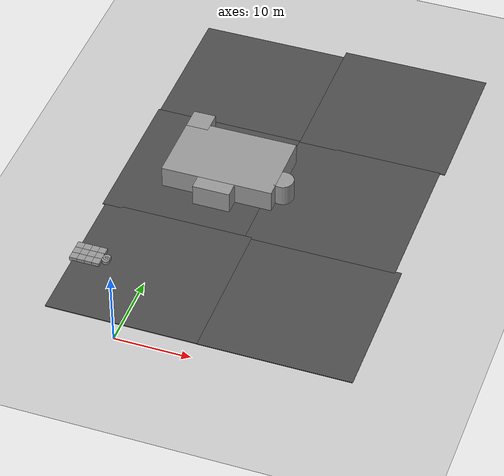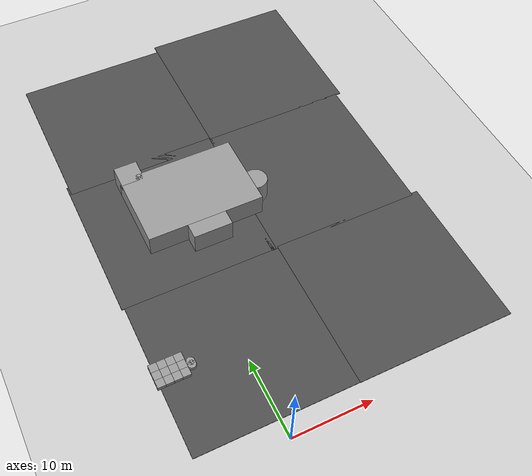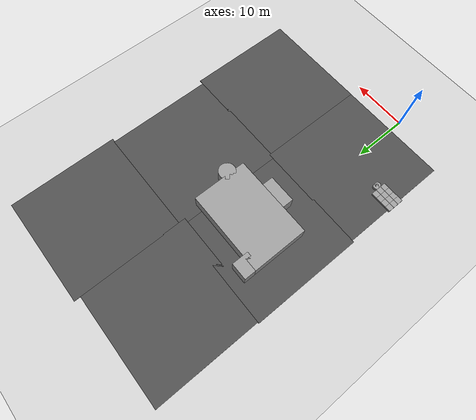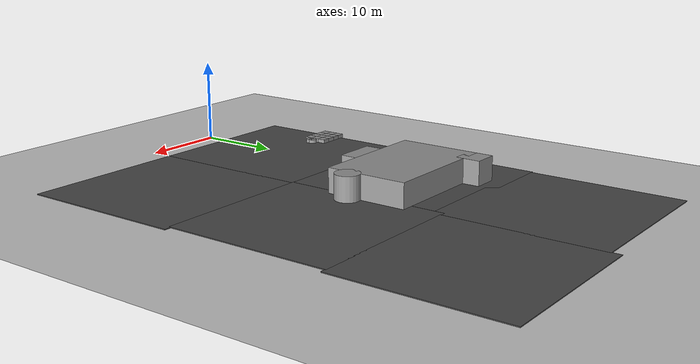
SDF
<sdf version="1.6">
 <world name="default">
  <model name="ground_plane">
   <static>1</static>
   <link name="link">
    <collision name="collision">
     <geometry><plane><normal>0 0 1</normal><size>100 100</size></plane></geometry>
     <surface><friction><ode><mu>100</mu><mu2>50</mu2></ode></friction></surface>
    </collision>
    <visual name="visual">
     <cast_shadows>0</cast_shadows>
     <geometry><plane><normal>0 0 1</normal><size>100 100</size></plane></geometry>
     <material>
      <script><uri>file://media/materials/scripts/gazebo.material</uri><name>Gazebo/Grey</name></script>
     </material>
    </visual>
   </link>
  </model>
  <model name="asphalt_plane">
   <static>1</static>
   <link name="link">
    <collision name="collision"><geometry><box><size>20 20 0.1</size></box></geometry></collision>
    <visual name="visual">
     <cast_shadows>0</cast_shadows>
     <geometry><box><size>20 20 0.1</size></box></geometry>
     <material>
      <script>
       <uri>model://asphalt_plane/materials/scripts</uri>
       <uri>model://asphalt_plane/materials/textures</uri>
       <name>vrc/asphalt</name>
      </script>
     </material>
    </visual>
   </link>
   <pose>-0.132526 12.4193 0 0 -0 0</pose>
  </model>
  <model name="asphalt_plane_1">
   <static>1</static>
   <link name="link">
    <collision name="collision"><geometry><box><size>20 20 0.1</size></box></geometry></collision>
    <visual name="visual">
     <cast_shadows>0</cast_shadows>
     <geometry><box><size>20 20 0.1</size></box></geometry>
     <material>
      <script>
       <uri>model://asphalt_plane/materials/scripts</uri>
       <uri>model://asphalt_plane/materials/textures</uri>
       <name>vrc/asphalt</name>
      </script>
     </material>
    </visual>
   </link>
   <pose>19.7678 12.3935 0 0 -0 0</pose>
  </model>
  <model name="asphalt_plane_3">
   <static>1</static>
   <link name="link">
    <collision name="collision"><geometry><box><size>20 20 0.1</size></box></geometry></collision>
    <visual name="visual">
     <cast_shadows>0</cast_shadows>
     <geometry><box><size>20 20 0.1</size></box></geometry>
     <material>
      <script>
       <uri>model://asphalt_plane/materials/scripts</uri>
       <uri>model://asphalt_plane/materials/textures</uri>
       <name>vrc/asphalt</name>
      </script>
     </material>
    </visual>
   </link>
   <pose>-0.46371 32.1726 0 0 -0 0</pose>
  </model>
  <model name="asphalt_plane_4">
   <static>1</static>
   <link name="link">
    <collision name="collision"><geometry><box><size>20 20 0.1</size></box></geometry></collision>
    <visual name="visual">
     <cast_shadows>0</cast_shadows>
     <geometry><box><size>20 20 0.1</size></box></geometry>
     <material>
      <script>
       <uri>model://asphalt_plane/materials/scripts</uri>
       <uri>model://asphalt_plane/materials/textures</uri>
       <name>vrc/asphalt</name>
      </script>
     </material>
    </visual>
   </link>
   <pose>18.9559 32.1129 0 0 -0 0</pose>
  </model>
  <model name="asphalt_plane_6">
   <static>1</static>
   <link name="link">
    <collision name="collision"><geometry><box><size>20 20 0.1</size></box></geometry></collision>
    <visual name="visual">
     <cast_shadows>0</cast_shadows>
     <geometry><box><size>20 20 0.1</size></box></geometry>
     <material>
      <script>
       <uri>model://asphalt_plane/materials/scripts</uri>
       <uri>model://asphalt_plane/materials/textures</uri>
       <name>vrc/asphalt</name>
      </script>
     </material>
    </visual>
   </link>
   <pose>-0.241035 50.8968 0 0 -0 0</pose>
  </model>
  <model name="asphalt_plane_7">
   <static>1</static>
   <link name="link">
    <collision name="collision"><geometry><box><size>20 20 0.1</size></box></geometry></collision>
    <visual name="visual">
     <cast_shadows>0</cast_shadows>
     <geometry><box><size>20 20 0.1</size></box></geometry>
     <material>
      <script>
       <uri>model://asphalt_plane/materials/scripts</uri>
       <uri>model://asphalt_plane/materials/textures</uri>
       <name>vrc/asphalt</name>
      </script>
     </material>
    </visual>
   </link>
   <pose>19.6222 51.9888 0 0 -0 0</pose>
  </model>
  <model name="car_1">
   <link name="link_0">
    <pose>-0.5 -0.883748 0 0 -0 0</pose>
    <inertial>
     <mass>1</mass>
     <inertia>
      <ixx>0.166667</ixx>
      <ixy>0</ixy>
      <ixz>0</ixz>
      <iyy>0.166667</iyy>
      <iyz>0</iyz>
      <izz>0.166667</izz>
     </inertia>
    </inertial>
    <visual name="visual">
     <geometry><box><size>1 1 1</size></box></geometry>
     <material>
      <lighting>1</lighting>
      <script><uri>file://media/materials/scripts/gazebo.material</uri><name>Gazebo/Grey</name></script>
      <ambient>0.3 0.3 0.3 1</ambient>
      <diffuse>0.7 0.7 0.7 1</diffuse>
      <specular>0.01 0.01 0.01 1</specular>
      <emissive>0 0 0 1</emissive>
     </material>
    </visual>
    <collision name="collision">
     <geometry><box><size>1 1 1</size></box></geometry>
     <surface>
      <friction>
       <ode><mu>1</mu><mu2>1</mu2><fdir1>0 0 0</fdir1><slip1>0</slip1><slip2>0</slip2></ode>
       <torsional>
        <coefficient>1</coefficient>
        <patch_radius>0</patch_radius>
        <surface_radius>0</surface_radius>
        <use_patch_radius>1</use_patch_radius>
        <ode><slip>0</slip></ode>
       </torsional>
      </friction>
      <bounce><restitution_coefficient>0</restitution_coefficient><threshold>1e+06</threshold></bounce>
      <contact>
       <collide_without_contact>0</collide_without_contact>
       <collide_without_contact_bitmask>1</collide_without_contact_bitmask>
       <collide_bitmask>1</collide_bitmask>
       <ode>
        <soft_cfm>0</soft_cfm>
        <soft_erp>0.2</soft_erp>
        <kp>1e+13</kp>
        <kd>1</kd>
        <max_vel>0.01</max_vel>
        <min_depth>0</min_depth>
       </ode>
       <bullet>
        <split_impulse>1</split_impulse>
        <split_impulse_penetration_threshold>-0.01</split_impulse_penetration_threshold>
        <soft_cfm>0</soft_cfm>
        <soft_erp>0.2</soft_erp>
        <kp>1e+13</kp>
        <kd>1</kd>
       </bullet>
      </contact>
     </surface>
    </collision>
   </link>
   <link name="link_1">
    <pose>0.5 -0.883748 0 0 -0 0</pose>
    <inertial>
     <mass>1</mass>
     <inertia>
      <ixx>0.166667</ixx>
      <ixy>0</ixy>
      <ixz>0</ixz>
      <iyy>0.166667</iyy>
      <iyz>0</iyz>
      <izz>0.166667</izz>
     </inertia>
    </inertial>
    <visual name="visual">
     <geometry><box><size>1 1 1</size></box></geometry>
     <material>
      <lighting>1</lighting>
      <script><uri>file://media/materials/scripts/gazebo.material</uri><name>Gazebo/Grey</name></script>
      <ambient>0.3 0.3 0.3 1</ambient>
      <diffuse>0.7 0.7 0.7 1</diffuse>
      <specular>0.01 0.01 0.01 1</specular>
      <emissive>0 0 0 1</emissive>
     </material>
    </visual>
    <collision name="collision">
     <geometry><box><size>1 1 1</size></box></geometry>
     <surface>
      <friction>
       <ode><mu>1</mu><mu2>1</mu2><fdir1>0 0 0</fdir1><slip1>0</slip1><slip2>0</slip2></ode>
       <torsional>
        <coefficient>1</coefficient>
        <patch_radius>0</patch_radius>
        <surface_radius>0</surface_radius>
        <use_patch_radius>1</use_patch_radius>
        <ode><slip>0</slip></ode>
       </torsional>
      </friction>
      <bounce><restitution_coefficient>0</restitution_coefficient><threshold>1e+06</threshold></bounce>
      <contact>
       <collide_without_contact>0</collide_without_contact>
       <collide_without_contact_bitmask>1</collide_without_contact_bitmask>
       <collide_bitmask>1</collide_bitmask>
       <ode>
        <soft_cfm>0</soft_cfm>
        <soft_erp>0.2</soft_erp>
        <kp>1e+13</kp>
        <kd>1</kd>
        <max_vel>0.01</max_vel>
        <min_depth>0</min_depth>
       </ode>
       <bullet>
        <split_impulse>1</split_impulse>
        <split_impulse_penetration_threshold>-0.01</split_impulse_penetration_threshold>
        <soft_cfm>0</soft_cfm>
        <soft_erp>0.2</soft_erp>
        <kp>1e+13</kp>
        <kd>1</kd>
       </bullet>
      </contact>
     </surface>
    </collision>
   </link>
   <link name="link_12">
    <pose>-1.5 0.11625 0 0 -0 0</pose>
    <inertial>
     <mass>1</mass>
     <inertia>
      <ixx>0.166667</ixx>
      <ixy>0</ixy>
      <ixz>0</ixz>
      <iyy>0.166667</iyy>
      <iyz>0</iyz>
      <izz>0.166667</izz>
     </inertia>
    </inertial>
    <visual name="visual">
     <geometry><box><size>1 1 1</size></box></geometry>
     <material>
      <lighting>1</lighting>
      <script><uri>file://media/materials/scripts/gazebo.material</uri><name>Gazebo/Grey</name></script>
      <ambient>0.3 0.3 0.3 1</ambient>
      <diffuse>0.7 0.7 0.7 1</diffuse>
      <specular>0.01 0.01 0.01 1</specular>
      <emissive>0 0 0 1</emissive>
     </material>
    </visual>
    <collision name="collision">
     <geometry><box><size>1 1 1</size></box></geometry>
     <surface>
      <friction>
       <ode><mu>1</mu><mu2>1</mu2><fdir1>0 0 0</fdir1><slip1>0</slip1><slip2>0</slip2></ode>
       <torsional>
        <coefficient>1</coefficient>
        <patch_radius>0</patch_radius>
        <surface_radius>0</surface_radius>
        <use_patch_radius>1</use_patch_radius>
        <ode><slip>0</slip></ode>
       </torsional>
      </friction>
      <bounce><restitution_coefficient>0</restitution_coefficient><threshold>1e+06</threshold></bounce>
      <contact>
       <collide_without_contact>0</collide_without_contact>
       <collide_without_contact_bitmask>1</collide_without_contact_bitmask>
       <collide_bitmask>1</collide_bitmask>
       <ode>
        <soft_cfm>0</soft_cfm>
        <soft_erp>0.2</soft_erp>
        <kp>1e+13</kp>
        <kd>1</kd>
        <max_vel>0.01</max_vel>
        <min_depth>0</min_depth>
       </ode>
       <bullet>
        <split_impulse>1</split_impulse>
        <split_impulse_penetration_threshold>-0.01</split_impulse_penetration_threshold>
        <soft_cfm>0</soft_cfm>
        <soft_erp>0.2</soft_erp>
        <kp>1e+13</kp>
        <kd>1</kd>
       </bullet>
      </contact>
     </surface>
    </collision>
   </link>
   <link name="link_13">
    <pose>1.5 1.11625 0 0 -0 0</pose>
    <inertial>
     <mass>1</mass>
     <inertia>
      <ixx>0.166667</ixx>
      <ixy>0</ixy>
      <ixz>0</ixz>
      <iyy>0.166667</iyy>
      <iyz>0</iyz>
      <izz>0.166667</izz>
     </inertia>
    </inertial>
    <visual name="visual">
     <geometry><box><size>1 1 1</size></box></geometry>
     <material>
      <lighting>1</lighting>
      <script><uri>file://media/materials/scripts/gazebo.material</uri><name>Gazebo/Grey</name></script>
      <ambient>0.3 0.3 0.3 1</ambient>
      <diffuse>0.7 0.7 0.7 1</diffuse>
      <specular>0.01 0.01 0.01 1</specular>
      <emissive>0 0 0 1</emissive>
     </material>
    </visual>
    <collision name="collision">
     <geometry><box><size>1 1 1</size></box></geometry>
     <surface>
      <friction>
       <ode><mu>1</mu><mu2>1</mu2><fdir1>0 0 0</fdir1><slip1>0</slip1><slip2>0</slip2></ode>
       <torsional>
        <coefficient>1</coefficient>
        <patch_radius>0</patch_radius>
        <surface_radius>0</surface_radius>
        <use_patch_radius>1</use_patch_radius>
        <ode><slip>0</slip></ode>
       </torsional>
      </friction>
      <bounce><restitution_coefficient>0</restitution_coefficient><threshold>1e+06</threshold></bounce>
      <contact>
       <collide_without_contact>0</collide_without_contact>
       <collide_without_contact_bitmask>1</collide_without_contact_bitmask>
       <collide_bitmask>1</collide_bitmask>
       <ode>
        <soft_cfm>0</soft_cfm>
        <soft_erp>0.2</soft_erp>
        <kp>1e+13</kp>
        <kd>1</kd>
        <max_vel>0.01</max_vel>
        <min_depth>0</min_depth>
       </ode>
       <bullet>
        <split_impulse>1</split_impulse>
        <split_impulse_penetration_threshold>-0.01</split_impulse_penetration_threshold>
        <soft_cfm>0</soft_cfm>
        <soft_erp>0.2</soft_erp>
        <kp>1e+13</kp>
        <kd>1</kd>
       </bullet>
      </contact>
     </surface>
    </collision>
   </link>
   <link name="link_14">
    <pose>0.5 1.11625 0 0 -0 0</pose>
    <inertial>
     <mass>1</mass>
     <inertia>
      <ixx>0.166667</ixx>
      <ixy>0</ixy>
      <ixz>0</ixz>
      <iyy>0.166667</iyy>
      <iyz>0</iyz>
      <izz>0.166667</izz>
     </inertia>
    </inertial>
    <visual name="visual">
     <geometry><box><size>1 1 1</size></box></geometry>
     <material>
      <lighting>1</lighting>
      <script><uri>file://media/materials/scripts/gazebo.material</uri><name>Gazebo/Grey</name></script>
      <ambient>0.3 0.3 0.3 1</ambient>
      <diffuse>0.7 0.7 0.7 1</diffuse>
      <specular>0.01 0.01 0.01 1</specular>
      <emissive>0 0 0 1</emissive>
     </material>
    </visual>
    <collision name="collision">
     <geometry><box><size>1 1 1</size></box></geometry>
     <surface>
      <friction>
       <ode><mu>1</mu><mu2>1</mu2><fdir1>0 0 0</fdir1><slip1>0</slip1><slip2>0</slip2></ode>
       <torsional>
        <coefficient>1</coefficient>
        <patch_radius>0</patch_radius>
        <surface_radius>0</surface_radius>
        <use_patch_radius>1</use_patch_radius>
        <ode><slip>0</slip></ode>
       </torsional>
      </friction>
      <bounce><restitution_coefficient>0</restitution_coefficient><threshold>1e+06</threshold></bounce>
      <contact>
       <collide_without_contact>0</collide_without_contact>
       <collide_without_contact_bitmask>1</collide_without_contact_bitmask>
       <collide_bitmask>1</collide_bitmask>
       <ode>
        <soft_cfm>0</soft_cfm>
        <soft_erp>0.2</soft_erp>
        <kp>1e+13</kp>
        <kd>1</kd>
        <max_vel>0.01</max_vel>
        <min_depth>0</min_depth>
       </ode>
       <bullet>
        <split_impulse>1</split_impulse>
        <split_impulse_penetration_threshold>-0.01</split_impulse_penetration_threshold>
        <soft_cfm>0</soft_cfm>
        <soft_erp>0.2</soft_erp>
        <kp>1e+13</kp>
        <kd>1</kd>
       </bullet>
      </contact>
     </surface>
    </collision>
   </link>
   <link name="link_15">
    <pose>-0.5 1.11625 0 0 -0 0</pose>
    <inertial>
     <mass>1</mass>
     <inertia>
      <ixx>0.166667</ixx>
      <ixy>0</ixy>
      <ixz>0</ixz>
      <iyy>0.166667</iyy>
      <iyz>0</iyz>
      <izz>0.166667</izz>
     </inertia>
    </inertial>
    <visual name="visual">
     <geometry><box><size>1 1 1</size></box></geometry>
     <material>
      <lighting>1</lighting>
      <script><uri>file://media/materials/scripts/gazebo.material</uri><name>Gazebo/Grey</name></script>
      <ambient>0.3 0.3 0.3 1</ambient>
      <diffuse>0.7 0.7 0.7 1</diffuse>
      <specular>0.01 0.01 0.01 1</specular>
      <emissive>0 0 0 1</emissive>
     </material>
    </visual>
    <collision name="collision">
     <geometry><box><size>1 1 1</size></box></geometry>
     <surface>
      <friction>
       <ode><mu>1</mu><mu2>1</mu2><fdir1>0 0 0</fdir1><slip1>0</slip1><slip2>0</slip2></ode>
       <torsional>
        <coefficient>1</coefficient>
        <patch_radius>0</patch_radius>
        <surface_radius>0</surface_radius>
        <use_patch_radius>1</use_patch_radius>
        <ode><slip>0</slip></ode>
       </torsional>
      </friction>
      <bounce><restitution_coefficient>0</restitution_coefficient><threshold>1e+06</threshold></bounce>
      <contact>
       <collide_without_contact>0</collide_without_contact>
       <collide_without_contact_bitmask>1</collide_without_contact_bitmask>
       <collide_bitmask>1</collide_bitmask>
       <ode>
        <soft_cfm>0</soft_cfm>
        <soft_erp>0.2</soft_erp>
        <kp>1e+13</kp>
        <kd>1</kd>
        <max_vel>0.01</max_vel>
        <min_depth>0</min_depth>
       </ode>
       <bullet>
        <split_impulse>1</split_impulse>
        <split_impulse_penetration_threshold>-0.01</split_impulse_penetration_threshold>
        <soft_cfm>0</soft_cfm>
        <soft_erp>0.2</soft_erp>
        <kp>1e+13</kp>
        <kd>1</kd>
       </bullet>
      </contact>
     </surface>
    </collision>
   </link>
   <link name="link_16">
    <pose>-1.5 1.11625 0 0 -0 0</pose>
    <inertial>
     <mass>1</mass>
     <inertia>
      <ixx>0.166667</ixx>
      <ixy>0</ixy>
      <ixz>0</ixz>
      <iyy>0.166667</iyy>
      <iyz>0</iyz>
      <izz>0.166667</izz>
     </inertia>
    </inertial>
    <visual name="visual">
     <geometry><box><size>1 1 1</size></box></geometry>
     <material>
      <lighting>1</lighting>
      <script><uri>file://media/materials/scripts/gazebo.material</uri><name>Gazebo/Grey</name></script>
      <ambient>0.3 0.3 0.3 1</ambient>
      <diffuse>0.7 0.7 0.7 1</diffuse>
      <specular>0.01 0.01 0.01 1</specular>
      <emissive>0 0 0 1</emissive>
     </material>
    </visual>
    <collision name="collision">
     <geometry><box><size>1 1 1</size></box></geometry>
     <surface>
      <friction>
       <ode><mu>1</mu><mu2>1</mu2><fdir1>0 0 0</fdir1><slip1>0</slip1><slip2>0</slip2></ode>
       <torsional>
        <coefficient>1</coefficient>
        <patch_radius>0</patch_radius>
        <surface_radius>0</surface_radius>
        <use_patch_radius>1</use_patch_radius>
        <ode><slip>0</slip></ode>
       </torsional>
      </friction>
      <bounce><restitution_coefficient>0</restitution_coefficient><threshold>1e+06</threshold></bounce>
      <contact>
       <collide_without_contact>0</collide_without_contact>
       <collide_without_contact_bitmask>1</collide_without_contact_bitmask>
       <collide_bitmask>1</collide_bitmask>
       <ode>
        <soft_cfm>0</soft_cfm>
        <soft_erp>0.2</soft_erp>
        <kp>1e+13</kp>
        <kd>1</kd>
        <max_vel>0.01</max_vel>
        <min_depth>0</min_depth>
       </ode>
       <bullet>
        <split_impulse>1</split_impulse>
        <split_impulse_penetration_threshold>-0.01</split_impulse_penetration_threshold>
        <soft_cfm>0</soft_cfm>
        <soft_erp>0.2</soft_erp>
        <kp>1e+13</kp>
        <kd>1</kd>
       </bullet>
      </contact>
     </surface>
    </collision>
   </link>
   <link name="link_19">
    <pose>2.5 -0.287812 0 0 -0 0</pose>
    <inertial>
     <mass>1</mass>
     <inertia><ixx>0.145833</ixx><ixy>0</ixy><ixz>0</ixz><iyy>0.145833</iyy><iyz>0</iyz><izz>0.125</izz></inertia>
    </inertial>
    <visual name="visual">
     <geometry><cylinder><radius>0.5</radius><length>1</length></cylinder></geometry>
     <material>
      <lighting>1</lighting>
      <script><uri>file://media/materials/scripts/gazebo.material</uri><name>Gazebo/Grey</name></script>
      <ambient>0.3 0.3 0.3 1</ambient>
      <diffuse>0.7 0.7 0.7 1</diffuse>
      <specular>0.01 0.01 0.01 1</specular>
      <emissive>0 0 0 1</emissive>
     </material>
    </visual>
    <collision name="collision">
     <geometry><cylinder><radius>0.5</radius><length>1</length></cylinder></geometry>
     <surface>
      <friction>
       <ode><mu>1</mu><mu2>1</mu2><fdir1>0 0 0</fdir1><slip1>0</slip1><slip2>0</slip2></ode>
       <torsional>
        <coefficient>1</coefficient>
        <patch_radius>0</patch_radius>
        <surface_radius>0</surface_radius>
        <use_patch_radius>1</use_patch_radius>
        <ode><slip>0</slip></ode>
       </torsional>
      </friction>
      <bounce><restitution_coefficient>0</restitution_coefficient><threshold>1e+06</threshold></bounce>
      <contact>
       <collide_without_contact>0</collide_without_contact>
       <collide_without_contact_bitmask>1</collide_without_contact_bitmask>
       <collide_bitmask>1</collide_bitmask>
       <ode>
        <soft_cfm>0</soft_cfm>
        <soft_erp>0.2</soft_erp>
        <kp>1e+13</kp>
        <kd>1</kd>
        <max_vel>0.01</max_vel>
        <min_depth>0</min_depth>
       </ode>
       <bullet>
        <split_impulse>1</split_impulse>
        <split_impulse_penetration_threshold>-0.01</split_impulse_penetration_threshold>
        <soft_cfm>0</soft_cfm>
        <soft_erp>0.2</soft_erp>
        <kp>1e+13</kp>
        <kd>1</kd>
       </bullet>
      </contact>
     </surface>
    </collision>
   </link>
   <link name="link_2">
    <pose>1.5 -0.883748 0 0 -0 0</pose>
    <inertial>
     <mass>1</mass>
     <inertia>
      <ixx>0.166667</ixx>
      <ixy>0</ixy>
      <ixz>0</ixz>
      <iyy>0.166667</iyy>
      <iyz>0</iyz>
      <izz>0.166667</izz>
     </inertia>
    </inertial>
    <visual name="visual">
     <geometry><box><size>1 1 1</size></box></geometry>
     <material>
      <lighting>1</lighting>
      <script><uri>file://media/materials/scripts/gazebo.material</uri><name>Gazebo/Grey</name></script>
      <ambient>0.3 0.3 0.3 1</ambient>
      <diffuse>0.7 0.7 0.7 1</diffuse>
      <specular>0.01 0.01 0.01 1</specular>
      <emissive>0 0 0 1</emissive>
     </material>
    </visual>
    <collision name="collision">
     <geometry><box><size>1 1 1</size></box></geometry>
     <surface>
      <friction>
       <ode><mu>1</mu><mu2>1</mu2><fdir1>0 0 0</fdir1><slip1>0</slip1><slip2>0</slip2></ode>
       <torsional>
        <coefficient>1</coefficient>
        <patch_radius>0</patch_radius>
        <surface_radius>0</surface_radius>
        <use_patch_radius>1</use_patch_radius>
        <ode><slip>0</slip></ode>
       </torsional>
      </friction>
      <bounce><restitution_coefficient>0</restitution_coefficient><threshold>1e+06</threshold></bounce>
      <contact>
       <collide_without_contact>0</collide_without_contact>
       <collide_without_contact_bitmask>1</collide_without_contact_bitmask>
       <collide_bitmask>1</collide_bitmask>
       <ode>
        <soft_cfm>0</soft_cfm>
        <soft_erp>0.2</soft_erp>
        <kp>1e+13</kp>
        <kd>1</kd>
        <max_vel>0.01</max_vel>
        <min_depth>0</min_depth>
       </ode>
       <bullet>
        <split_impulse>1</split_impulse>
        <split_impulse_penetration_threshold>-0.01</split_impulse_penetration_threshold>
        <soft_cfm>0</soft_cfm>
        <soft_erp>0.2</soft_erp>
        <kp>1e+13</kp>
        <kd>1</kd>
       </bullet>
      </contact>
     </surface>
    </collision>
   </link>
   <link name="link_20">
    <pose>2.5 0.11625 0 0 -0 0</pose>
    <inertial>
     <mass>1</mass>
     <inertia><ixx>0.145833</ixx><ixy>0</ixy><ixz>0</ixz><iyy>0.145833</iyy><iyz>0</iyz><izz>0.125</izz></inertia>
    </inertial>
    <visual name="visual">
     <geometry><cylinder><radius>0.5</radius><length>1</length></cylinder></geometry>
     <material>
      <lighting>1</lighting>
      <script><uri>file://media/materials/scripts/gazebo.material</uri><name>Gazebo/Grey</name></script>
      <ambient>0.3 0.3 0.3 1</ambient>
      <diffuse>0.7 0.7 0.7 1</diffuse>
      <specular>0.01 0.01 0.01 1</specular>
      <emissive>0 0 0 1</emissive>
     </material>
    </visual>
    <collision name="collision">
     <geometry><cylinder><radius>0.5</radius><length>1</length></cylinder></geometry>
     <surface>
      <friction>
       <ode><mu>1</mu><mu2>1</mu2><fdir1>0 0 0</fdir1><slip1>0</slip1><slip2>0</slip2></ode>
       <torsional>
        <coefficient>1</coefficient>
        <patch_radius>0</patch_radius>
        <surface_radius>0</surface_radius>
        <use_patch_radius>1</use_patch_radius>
        <ode><slip>0</slip></ode>
       </torsional>
      </friction>
      <bounce><restitution_coefficient>0</restitution_coefficient><threshold>1e+06</threshold></bounce>
      <contact>
       <collide_without_contact>0</collide_without_contact>
       <collide_without_contact_bitmask>1</collide_without_contact_bitmask>
       <collide_bitmask>1</collide_bitmask>
       <ode>
        <soft_cfm>0</soft_cfm>
        <soft_erp>0.2</soft_erp>
        <kp>1e+13</kp>
        <kd>1</kd>
        <max_vel>0.01</max_vel>
        <min_depth>0</min_depth>
       </ode>
       <bullet>
        <split_impulse>1</split_impulse>
        <split_impulse_penetration_threshold>-0.01</split_impulse_penetration_threshold>
        <soft_cfm>0</soft_cfm>
        <soft_erp>0.2</soft_erp>
        <kp>1e+13</kp>
        <kd>1</kd>
       </bullet>
      </contact>
     </surface>
    </collision>
   </link>
   <link name="link_3">
    <pose>1.5 0.116252 0 0 -0 0</pose>
    <inertial>
     <mass>1</mass>
     <inertia>
      <ixx>0.166667</ixx>
      <ixy>0</ixy>
      <ixz>0</ixz>
      <iyy>0.166667</iyy>
      <iyz>0</iyz>
      <izz>0.166667</izz>
     </inertia>
    </inertial>
    <visual name="visual">
     <geometry><box><size>1 1 1</size></box></geometry>
     <material>
      <lighting>1</lighting>
      <script><uri>file://media/materials/scripts/gazebo.material</uri><name>Gazebo/Grey</name></script>
      <ambient>0.3 0.3 0.3 1</ambient>
      <diffuse>0.7 0.7 0.7 1</diffuse>
      <specular>0.01 0.01 0.01 1</specular>
      <emissive>0 0 0 1</emissive>
     </material>
    </visual>
    <collision name="collision">
     <geometry><box><size>1 1 1</size></box></geometry>
     <surface>
      <friction>
       <ode><mu>1</mu><mu2>1</mu2><fdir1>0 0 0</fdir1><slip1>0</slip1><slip2>0</slip2></ode>
       <torsional>
        <coefficient>1</coefficient>
        <patch_radius>0</patch_radius>
        <surface_radius>0</surface_radius>
        <use_patch_radius>1</use_patch_radius>
        <ode><slip>0</slip></ode>
       </torsional>
      </friction>
      <bounce><restitution_coefficient>0</restitution_coefficient><threshold>1e+06</threshold></bounce>
      <contact>
       <collide_without_contact>0</collide_without_contact>
       <collide_without_contact_bitmask>1</collide_without_contact_bitmask>
       <collide_bitmask>1</collide_bitmask>
       <ode>
        <soft_cfm>0</soft_cfm>
        <soft_erp>0.2</soft_erp>
        <kp>1e+13</kp>
        <kd>1</kd>
        <max_vel>0.01</max_vel>
        <min_depth>0</min_depth>
       </ode>
       <bullet>
        <split_impulse>1</split_impulse>
        <split_impulse_penetration_threshold>-0.01</split_impulse_penetration_threshold>
        <soft_cfm>0</soft_cfm>
        <soft_erp>0.2</soft_erp>
        <kp>1e+13</kp>
        <kd>1</kd>
       </bullet>
      </contact>
     </surface>
    </collision>
   </link>
   <link name="link_4">
    <pose>0.5 0.116252 0 0 -0 0</pose>
    <inertial>
     <mass>1</mass>
     <inertia>
      <ixx>0.166667</ixx>
      <ixy>0</ixy>
      <ixz>0</ixz>
      <iyy>0.166667</iyy>
      <iyz>0</iyz>
      <izz>0.166667</izz>
     </inertia>
    </inertial>
    <visual name="visual">
     <geometry><box><size>1 1 1</size></box></geometry>
     <material>
      <lighting>1</lighting>
      <script><uri>file://media/materials/scripts/gazebo.material</uri><name>Gazebo/Grey</name></script>
      <ambient>0.3 0.3 0.3 1</ambient>
      <diffuse>0.7 0.7 0.7 1</diffuse>
      <specular>0.01 0.01 0.01 1</specular>
      <emissive>0 0 0 1</emissive>
     </material>
    </visual>
    <collision name="collision">
     <geometry><box><size>1 1 1</size></box></geometry>
     <surface>
      <friction>
       <ode><mu>1</mu><mu2>1</mu2><fdir1>0 0 0</fdir1><slip1>0</slip1><slip2>0</slip2></ode>
       <torsional>
        <coefficient>1</coefficient>
        <patch_radius>0</patch_radius>
        <surface_radius>0</surface_radius>
        <use_patch_radius>1</use_patch_radius>
        <ode><slip>0</slip></ode>
       </torsional>
      </friction>
      <bounce><restitution_coefficient>0</restitution_coefficient><threshold>1e+06</threshold></bounce>
      <contact>
       <collide_without_contact>0</collide_without_contact>
       <collide_without_contact_bitmask>1</collide_without_contact_bitmask>
       <collide_bitmask>1</collide_bitmask>
       <ode>
        <soft_cfm>0</soft_cfm>
        <soft_erp>0.2</soft_erp>
        <kp>1e+13</kp>
        <kd>1</kd>
        <max_vel>0.01</max_vel>
        <min_depth>0</min_depth>
       </ode>
       <bullet>
        <split_impulse>1</split_impulse>
        <split_impulse_penetration_threshold>-0.01</split_impulse_penetration_threshold>
        <soft_cfm>0</soft_cfm>
        <soft_erp>0.2</soft_erp>
        <kp>1e+13</kp>
        <kd>1</kd>
       </bullet>
      </contact>
     </surface>
    </collision>
   </link>
   <link name="link_5">
    <pose>-0.5 0.116252 0 0 -0 0</pose>
    <inertial>
     <mass>1</mass>
     <inertia>
      <ixx>0.166667</ixx>
      <ixy>0</ixy>
      <ixz>0</ixz>
      <iyy>0.166667</iyy>
      <iyz>0</iyz>
      <izz>0.166667</izz>
     </inertia>
    </inertial>
    <visual name="visual">
     <geometry><box><size>1 1 1</size></box></geometry>
     <material>
      <lighting>1</lighting>
      <script><uri>file://media/materials/scripts/gazebo.material</uri><name>Gazebo/Grey</name></script>
      <ambient>0.3 0.3 0.3 1</ambient>
      <diffuse>0.7 0.7 0.7 1</diffuse>
      <specular>0.01 0.01 0.01 1</specular>
      <emissive>0 0 0 1</emissive>
     </material>
    </visual>
    <collision name="collision">
     <geometry><box><size>1 1 1</size></box></geometry>
     <surface>
      <friction>
       <ode><mu>1</mu><mu2>1</mu2><fdir1>0 0 0</fdir1><slip1>0</slip1><slip2>0</slip2></ode>
       <torsional>
        <coefficient>1</coefficient>
        <patch_radius>0</patch_radius>
        <surface_radius>0</surface_radius>
        <use_patch_radius>1</use_patch_radius>
        <ode><slip>0</slip></ode>
       </torsional>
      </friction>
      <bounce><restitution_coefficient>0</restitution_coefficient><threshold>1e+06</threshold></bounce>
      <contact>
       <collide_without_contact>0</collide_without_contact>
       <collide_without_contact_bitmask>1</collide_without_contact_bitmask>
       <collide_bitmask>1</collide_bitmask>
       <ode>
        <soft_cfm>0</soft_cfm>
        <soft_erp>0.2</soft_erp>
        <kp>1e+13</kp>
        <kd>1</kd>
        <max_vel>0.01</max_vel>
        <min_depth>0</min_depth>
       </ode>
       <bullet>
        <split_impulse>1</split_impulse>
        <split_impulse_penetration_threshold>-0.01</split_impulse_penetration_threshold>
        <soft_cfm>0</soft_cfm>
        <soft_erp>0.2</soft_erp>
        <kp>1e+13</kp>
        <kd>1</kd>
       </bullet>
      </contact>
     </surface>
    </collision>
   </link>
   <link name="link_9">
    <pose>-1.5 -0.883748 0 0 -0 0</pose>
    <inertial>
     <mass>1</mass>
     <inertia>
      <ixx>0.166667</ixx>
      <ixy>0</ixy>
      <ixz>0</ixz>
      <iyy>0.166667</iyy>
      <iyz>0</iyz>
      <izz>0.166667</izz>
     </inertia>
    </inertial>
    <visual name="visual">
     <geometry><box><size>1 1 1</size></box></geometry>
     <material>
      <lighting>1</lighting>
      <script><uri>file://media/materials/scripts/gazebo.material</uri><name>Gazebo/Grey</name></script>
      <ambient>0.3 0.3 0.3 1</ambient>
      <diffuse>0.7 0.7 0.7 1</diffuse>
      <specular>0.01 0.01 0.01 1</specular>
      <emissive>0 0 0 1</emissive>
     </material>
    </visual>
    <collision name="collision">
     <geometry><box><size>1 1 1</size></box></geometry>
     <surface>
      <friction>
       <ode><mu>1</mu><mu2>1</mu2><fdir1>0 0 0</fdir1><slip1>0</slip1><slip2>0</slip2></ode>
       <torsional>
        <coefficient>1</coefficient>
        <patch_radius>0</patch_radius>
        <surface_radius>0</surface_radius>
        <use_patch_radius>1</use_patch_radius>
        <ode><slip>0</slip></ode>
       </torsional>
      </friction>
      <bounce><restitution_coefficient>0</restitution_coefficient><threshold>1e+06</threshold></bounce>
      <contact>
       <collide_without_contact>0</collide_without_contact>
       <collide_without_contact_bitmask>1</collide_without_contact_bitmask>
       <collide_bitmask>1</collide_bitmask>
       <ode>
        <soft_cfm>0</soft_cfm>
        <soft_erp>0.2</soft_erp>
        <kp>1e+13</kp>
        <kd>1</kd>
        <max_vel>0.01</max_vel>
        <min_depth>0</min_depth>
       </ode>
       <bullet>
        <split_impulse>1</split_impulse>
        <split_impulse_penetration_threshold>-0.01</split_impulse_penetration_threshold>
        <soft_cfm>0</soft_cfm>
        <soft_erp>0.2</soft_erp>
        <kp>1e+13</kp>
        <kd>1</kd>
       </bullet>
      </contact>
     </surface>
    </collision>
   </link>
   <static>1</static>
   <pose>-8.47161 12.4344 0 0 -0 0</pose>
  </model>
  <model name="central_building">
   <link name="link_21">
    <pose>-0.5 0.6079 0 0 -0 0</pose>
    <inertial>
     <mass>10000</mass>
     <inertia>
      <ixx>0.166667</ixx>
      <ixy>0</ixy>
      <ixz>0</ixz>
      <iyy>0.166667</iyy>
      <iyz>0</iyz>
      <izz>0.166667</izz>
     </inertia>
    </inertial>
    <visual name="visual">
     <geometry><box><size>15 10 5</size></box></geometry>
     <material>
      <lighting>1</lighting>
      <script><uri>file://media/materials/scripts/gazebo.material</uri><name>Gazebo/Grey</name></script>
      <ambient>0.3 0.3 0.3 1</ambient>
      <diffuse>0.7 0.7 0.7 1</diffuse>
      <specular>0.01 0.01 0.01 1</specular>
      <emissive>0 0 0 1</emissive>
      <shader type="vertex"><normal_map>__default__</normal_map></shader>
     </material>
    </visual>
    <collision name="collision">
     <geometry><box><size>1 1 1</size></box></geometry>
     <surface>
      <friction>
       <ode><mu>1</mu><mu2>1</mu2><fdir1>0 0 0</fdir1><slip1>0</slip1><slip2>0</slip2></ode>
       <torsional>
        <coefficient>1</coefficient>
        <patch_radius>0</patch_radius>
        <surface_radius>0</surface_radius>
        <use_patch_radius>1</use_patch_radius>
        <ode><slip>0</slip></ode>
       </torsional>
      </friction>
      <bounce><restitution_coefficient>0</restitution_coefficient><threshold>1e+06</threshold></bounce>
      <contact>
       <collide_without_contact>0</collide_without_contact>
       <collide_without_contact_bitmask>1</collide_without_contact_bitmask>
       <collide_bitmask>1</collide_bitmask>
       <ode>
        <soft_cfm>0</soft_cfm>
        <soft_erp>0.2</soft_erp>
        <kp>1e+13</kp>
        <kd>1</kd>
        <max_vel>0.01</max_vel>
        <min_depth>0</min_depth>
       </ode>
       <bullet>
        <split_impulse>1</split_impulse>
        <split_impulse_penetration_threshold>-0.01</split_impulse_penetration_threshold>
        <soft_cfm>0</soft_cfm>
        <soft_erp>0.2</soft_erp>
        <kp>1e+13</kp>
        <kd>1</kd>
       </bullet>
      </contact>
     </surface>
    </collision>
   </link>
   <link name="link_22">
    <pose>-0.5 -5.3921 0 0 -0 0</pose>
    <inertial>
     <mass>10000</mass>
     <inertia>
      <ixx>0.166667</ixx>
      <ixy>0</ixy>
      <ixz>0</ixz>
      <iyy>0.166667</iyy>
      <iyz>0</iyz>
      <izz>0.166667</izz>
     </inertia>
    </inertial>
    <visual name="visual">
     <geometry><box><size>5 2 5</size></box></geometry>
     <material>
      <lighting>1</lighting>
      <script><uri>file://media/materials/scripts/gazebo.material</uri><name>Gazebo/Grey</name></script>
      <ambient>0.3 0.3 0.3 1</ambient>
      <diffuse>0.7 0.7 0.7 1</diffuse>
      <specular>0.01 0.01 0.01 1</specular>
      <emissive>0 0 0 1</emissive>
      <shader type="vertex"><normal_map>__default__</normal_map></shader>
     </material>
    </visual>
    <collision name="collision">
     <geometry><box><size>1 1 1</size></box></geometry>
     <surface>
      <friction>
       <ode><mu>1</mu><mu2>1</mu2><fdir1>0 0 0</fdir1><slip1>0</slip1><slip2>0</slip2></ode>
       <torsional>
        <coefficient>1</coefficient>
        <patch_radius>0</patch_radius>
        <surface_radius>0</surface_radius>
        <use_patch_radius>1</use_patch_radius>
        <ode><slip>0</slip></ode>
       </torsional>
      </friction>
      <bounce><restitution_coefficient>0</restitution_coefficient><threshold>1e+06</threshold></bounce>
      <contact>
       <collide_without_contact>0</collide_without_contact>
       <collide_without_contact_bitmask>1</collide_without_contact_bitmask>
       <collide_bitmask>1</collide_bitmask>
       <ode>
        <soft_cfm>0</soft_cfm>
        <soft_erp>0.2</soft_erp>
        <kp>1e+13</kp>
        <kd>1</kd>
        <max_vel>0.01</max_vel>
        <min_depth>0</min_depth>
       </ode>
       <bullet>
        <split_impulse>1</split_impulse>
        <split_impulse_penetration_threshold>-0.01</split_impulse_penetration_threshold>
        <soft_cfm>0</soft_cfm>
        <soft_erp>0.2</soft_erp>
        <kp>1e+13</kp>
        <kd>1</kd>
       </bullet>
      </contact>
     </surface>
    </collision>
   </link>
   <link name="link_23">
    <pose>7.5 -1.3921 0 0 -0 0</pose>
    <inertial>
     <mass>10000</mass>
     <inertia><ixx>0.145833</ixx><ixy>0</ixy><ixz>0</ixz><iyy>0.145833</iyy><iyz>0</iyz><izz>0.125</izz></inertia>
    </inertial>
    <visual name="visual">
     <geometry><cylinder><radius>1.5</radius><length>5</length></cylinder></geometry>
     <material>
      <lighting>1</lighting>
      <script><uri>file://media/materials/scripts/gazebo.material</uri><name>Gazebo/Grey</name></script>
      <ambient>0.3 0.3 0.3 1</ambient>
      <diffuse>0.7 0.7 0.7 1</diffuse>
      <specular>0.01 0.01 0.01 1</specular>
      <emissive>0 0 0 1</emissive>
      <shader type="vertex"><normal_map>__default__</normal_map></shader>
     </material>
    </visual>
    <collision name="collision">
     <geometry><cylinder><radius>0.5</radius><length>1</length></cylinder></geometry>
     <surface>
      <friction>
       <ode><mu>1</mu><mu2>1</mu2><fdir1>0 0 0</fdir1><slip1>0</slip1><slip2>0</slip2></ode>
       <torsional>
        <coefficient>1</coefficient>
        <patch_radius>0</patch_radius>
        <surface_radius>0</surface_radius>
        <use_patch_radius>1</use_patch_radius>
        <ode><slip>0</slip></ode>
       </torsional>
      </friction>
      <bounce><restitution_coefficient>0</restitution_coefficient><threshold>1e+06</threshold></bounce>
      <contact>
       <collide_without_contact>0</collide_without_contact>
       <collide_without_contact_bitmask>1</collide_without_contact_bitmask>
       <collide_bitmask>1</collide_bitmask>
       <ode>
        <soft_cfm>0</soft_cfm>
        <soft_erp>0.2</soft_erp>
        <kp>1e+13</kp>
        <kd>1</kd>
        <max_vel>0.01</max_vel>
        <min_depth>0</min_depth>
       </ode>
       <bullet>
        <split_impulse>1</split_impulse>
        <split_impulse_penetration_threshold>-0.01</split_impulse_penetration_threshold>
        <soft_cfm>0</soft_cfm>
        <soft_erp>0.2</soft_erp>
        <kp>1e+13</kp>
        <kd>1</kd>
       </bullet>
      </contact>
     </surface>
    </collision>
   </link>
   <link name="link_25">
    <pose>-6.5 6.1763 0 0 -0 0</pose>
    <inertial>
     <mass>1000</mass>
     <inertia>
      <ixx>0.166667</ixx>
      <ixy>0</ixy>
      <ixz>0</ixz>
      <iyy>0.166667</iyy>
      <iyz>0</iyz>
      <izz>0.166667</izz>
     </inertia>
    </inertial>
    <visual name="visual">
     <geometry><box><size>3 3 5</size></box></geometry>
     <material>
      <lighting>1</lighting>
      <script><uri>file://media/materials/scripts/gazebo.material</uri><name>Gazebo/Grey</name></script>
      <ambient>0.3 0.3 0.3 1</ambient>
      <diffuse>0.7 0.7 0.7 1</diffuse>
      <specular>0.01 0.01 0.01 1</specular>
      <emissive>0 0 0 1</emissive>
      <shader type="vertex"><normal_map>__default__</normal_map></shader>
     </material>
    </visual>
    <collision name="collision">
     <geometry><box><size>1 1 1</size></box></geometry>
     <surface>
      <friction>
       <ode><mu>1</mu><mu2>1</mu2><fdir1>0 0 0</fdir1><slip1>0</slip1><slip2>0</slip2></ode>
       <torsional>
        <coefficient>1</coefficient>
        <patch_radius>0</patch_radius>
        <surface_radius>0</surface_radius>
        <use_patch_radius>1</use_patch_radius>
        <ode><slip>0</slip></ode>
       </torsional>
      </friction>
      <bounce><restitution_coefficient>0</restitution_coefficient><threshold>1e+06</threshold></bounce>
      <contact>
       <collide_without_contact>0</collide_without_contact>
       <collide_without_contact_bitmask>1</collide_without_contact_bitmask>
       <collide_bitmask>1</collide_bitmask>
       <ode>
        <soft_cfm>0</soft_cfm>
        <soft_erp>0.2</soft_erp>
        <kp>1e+13</kp>
        <kd>1</kd>
        <max_vel>0.01</max_vel>
        <min_depth>0</min_depth>
       </ode>
       <bullet>
        <split_impulse>1</split_impulse>
        <split_impulse_penetration_threshold>-0.01</split_impulse_penetration_threshold>
        <soft_cfm>0</soft_cfm>
        <soft_erp>0.2</soft_erp>
        <kp>1e+13</kp>
        <kd>1</kd>
       </bullet>
      </contact>
     </surface>
    </collision>
   </link>
   <static>0</static>
   <pose>3.5 32.3921 0.5 0 -0 0</pose>
  </model>
 </world>
</sdf>
